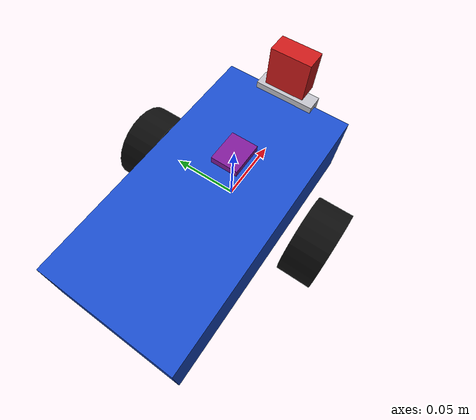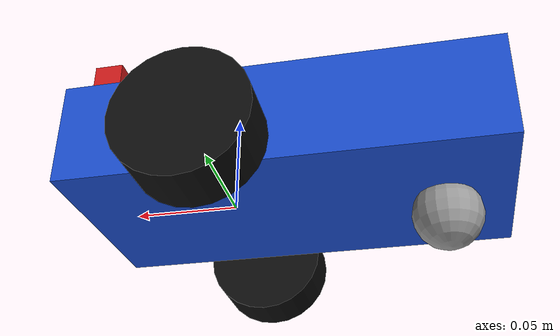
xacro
<?xml version="1.0"?>
<robot name="walle" xmlns:xacro="http://www.ros.org/wiki/xacro">

  <!-- Relative to this file -->
  <xacro:include filename="gazebo_car.urdf.xacro"/>

  <!-- ===== HC-SR04 (added for RQ3) ===== -->
  <xacro:property name="ultrasonic_drop" value="0.03"/>   <!-- below the camera center -->
  <xacro:property name="ultrasonic_half_beam" value="0.2618"/>   <!-- 15 deg -->

  <link name="ultrasonic_link">
    <visual>
      <geometry><box size="0.012 0.045 0.02"/></geometry>
      <material name="ultrasonic_silver"><color rgba="0.75 0.75 0.78 1"/></material>
    </visual>
    <inertial>
      <mass value="0.008"/>
      <inertia ixx="1e-6" ixy="0" ixz="0" iyy="1e-6" iyz="0" izz="1e-6"/>
    </inertial>
  </link>
  <joint name="ultrasonic_joint" type="fixed">
    <parent link="base_link"/>
    <child link="ultrasonic_link"/>
    <origin xyz="${camera_x} 0 ${camera_z - ultrasonic_drop}"/>
  </joint>

  <gazebo reference="ultrasonic_link">
    <sensor name="ultrasonic_sensor" type="gpu_lidar">
      <always_on>true</always_on>
      <!-- Faster than the firmware's 60 ms ping, so every ping sees a fresh frame -->
      <update_rate>20</update_rate>
      <topic>ultrasonic</topic>
      <lidar>
        <scan>
          <horizontal>
            <samples>21</samples>
            <resolution>1</resolution>
            <min_angle>${-ultrasonic_half_beam}</min_angle>
            <max_angle>${ultrasonic_half_beam}</max_angle>
          </horizontal>
          <vertical>
            <samples>13</samples>
            <resolution>1</resolution>
            <min_angle>${-ultrasonic_half_beam}</min_angle>
            <max_angle>${ultrasonic_half_beam}</max_angle>
          </vertical>
        </scan>
        <range>
          <min>0.02</min>
          <max>4.5</max>
          <resolution>0.001</resolution>
        </range>
      </lidar>
    </sensor>
  </gazebo>

</robot>

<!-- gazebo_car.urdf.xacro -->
<robot name="gazebo_car" xmlns:xacro="http://www.ros.org/wiki/xacro">

  <!-- ===== Dimensions: edit these to match your robot ===== -->
  <xacro:property name="chassis_length" value="0.2025"/>
  <xacro:property name="chassis_width" value="0.10"/>
  <xacro:property name="chassis_height" value="0.05"/>
  <xacro:property name="chassis_mass" value="0.60"/>
  <!-- Chassis center, measured from the midpoint between the two wheel axles -->
  <xacro:property name="chassis_x" value="-0.03"/>
  <xacro:property name="chassis_z" value="0.02"/>

  <xacro:property name="wheel_radius" value="0.03"/>
  <xacro:property name="wheel_width" value="0.026"/>
  <!-- Distance between the centers of the two drive wheels -->
  <xacro:property name="wheel_separation" value="0.145"/>
  <xacro:property name="wheel_mass" value="0.05"/>

  <!-- The caster touches the ground at the same height as the drive wheels -->
  <xacro:property name="caster_radius" value="0.0165"/>
  <xacro:property name="caster_x" value="-0.10"/>

  <xacro:property name="imu_x" value="0.0"/>
  <xacro:property name="imu_z" value="0.05"/>
  <xacro:property name="camera_x" value="0.07"/>
  <xacro:property name="camera_z" value="0.07"/>

  <!-- ===== Inertia helpers ===== -->
  <xacro:macro name="box_inertia" params="m x y z">
    <inertia ixx="${m*(y*y+z*z)/12}" ixy="0" ixz="0"
             iyy="${m*(x*x+z*z)/12}" iyz="0"
             izz="${m*(x*x+y*y)/12}"/>
  </xacro:macro>
  <xacro:macro name="cylinder_inertia" params="m r h">
    <inertia ixx="${m*(3*r*r+h*h)/12}" ixy="0" ixz="0"
             iyy="${m*(3*r*r+h*h)/12}" iyz="0"
             izz="${m*r*r/2}"/>
  </xacro:macro>

  <!-- ===== Chassis ===== -->
  <!-- base_link sits at the midpoint between the two wheel axles -->
  <link name="base_link">
    <visual>
      <origin xyz="${chassis_x} 0 ${chassis_z}"/>
      <geometry><box size="${chassis_length} ${chassis_width} ${chassis_height}"/></geometry>
      <material name="chassis_blue"><color rgba="0.1 0.3 0.8 1"/></material>
    </visual>
    <collision>
      <origin xyz="${chassis_x} 0 ${chassis_z}"/>
      <geometry><box size="${chassis_length} ${chassis_width} ${chassis_height}"/></geometry>
    </collision>
    <inertial>
      <origin xyz="${chassis_x} 0 ${chassis_z}"/>
      <mass value="${chassis_mass}"/>
      <xacro:box_inertia m="${chassis_mass}" x="${chassis_length}" y="${chassis_width}" z="${chassis_height}"/>
    </inertial>
  </link>

  <!-- ===== Drive wheels ===== -->
  <xacro:macro name="drive_wheel" params="side y_sign">
    <link name="${side}_wheel_link">
      <visual>
        <geometry><cylinder radius="${wheel_radius}" length="${wheel_width}"/></geometry>
        <material name="tire_black"><color rgba="0.05 0.05 0.05 1"/></material>
      </visual>
      <!-- A sphere touches the ground at one point, in the middle of the wheel.
           A cylinder touches at its edges, which makes the robot turn more than
           its wheel odometry calculates. -->
      <collision>
        <geometry><sphere radius="${wheel_radius}"/></geometry>
      </collision>
      <inertial>
        <mass value="${wheel_mass}"/>
        <xacro:cylinder_inertia m="${wheel_mass}" r="${wheel_radius}" h="${wheel_width}"/>
      </inertial>
    </link>
    <!-- The joint turns the wheel on its side so it spins about the robot's y axis -->
    <joint name="${side}_wheel_joint" type="continuous">
      <parent link="base_link"/>
      <child link="${side}_wheel_link"/>
      <origin xyz="0 ${y_sign*wheel_separation/2} 0" rpy="${-pi/2} 0 0"/>
      <axis xyz="0 0 1"/>
    </joint>
    <gazebo reference="${side}_wheel_link">
      <mu1>1.0</mu1>
      <mu2>1.0</mu2>
    </gazebo>
  </xacro:macro>

  <xacro:drive_wheel side="left" y_sign="1"/>
  <xacro:drive_wheel side="right" y_sign="-1"/>

  <!-- ===== Caster ball (no friction, so it slides like a real ball caster) ===== -->
  <link name="caster_link">
    <visual>
      <geometry><sphere radius="${caster_radius}"/></geometry>
      <material name="caster_gray"><color rgba="0.6 0.6 0.6 1"/></material>
    </visual>
    <collision>
      <geometry><sphere radius="${caster_radius}"/></geometry>
    </collision>
    <inertial>
      <mass value="0.01"/>
      <inertia ixx="1e-6" ixy="0" ixz="0" iyy="1e-6" iyz="0" izz="1e-6"/>
    </inertial>
  </link>
  <joint name="caster_joint" type="fixed">
    <parent link="base_link"/>
    <child link="caster_link"/>
    <origin xyz="${caster_x} 0 ${caster_radius - wheel_radius}"/>
  </joint>
  <gazebo reference="caster_link">
    <mu1>0.0</mu1>
    <mu2>0.0</mu2>
  </gazebo>

  <!-- ===== Sensor mounts ===== -->
  <link name="imu_link">
    <visual>
      <geometry><box size="0.025 0.02 0.005"/></geometry>
      <material name="imu_purple"><color rgba="0.5 0.1 0.6 1"/></material>
    </visual>
    <inertial>
      <mass value="0.005"/>
      <inertia ixx="1e-7" ixy="0" ixz="0" iyy="1e-7" iyz="0" izz="1e-7"/>
    </inertial>
  </link>
  <joint name="imu_joint" type="fixed">
    <parent link="base_link"/>
    <child link="imu_link"/>
    <origin xyz="${imu_x} 0 ${imu_z}"/>
  </joint>

  <link name="camera_link">
    <visual>
      <geometry><box size="0.015 0.03 0.03"/></geometry>
      <material name="camera_red"><color rgba="0.8 0.1 0.1 1"/></material>
    </visual>
    <inertial>
      <mass value="0.01"/>
      <inertia ixx="1e-6" ixy="0" ixz="0" iyy="1e-6" iyz="0" izz="1e-6"/>
    </inertial>
  </link>
  <joint name="camera_joint" type="fixed">
    <parent link="base_link"/>
    <child link="camera_link"/>
    <origin xyz="${camera_x} 0 ${camera_z}"/>
  </joint>

  <!-- ===== Gazebo sensors ===== -->
  <gazebo reference="imu_link">
    <sensor name="imu_sensor" type="imu">
      <always_on>true</always_on>
      <update_rate>50</update_rate>
      <topic>imu</topic>
      <imu>
        <angular_velocity>
          <z><noise type="gaussian"><mean>0</mean><stddev>0.002</stddev></noise></z>
        </angular_velocity>
        <linear_acceleration>
          <x><noise type="gaussian"><mean>0</mean><stddev>0.02</stddev></noise></x>
          <y><noise type="gaussian"><mean>0</mean><stddev>0.02</stddev></noise></y>
        </linear_acceleration>
      </imu>
    </sensor>
  </gazebo>

  <gazebo reference="camera_link">
    <sensor name="camera_sensor" type="camera">
      <always_on>true</always_on>
      <!-- A small image at 10 Hz keeps software rendering fast -->
      <update_rate>10</update_rate>
      <topic>camera/image_raw</topic>
      <camera>
        <horizontal_fov>1.047</horizontal_fov>
        <image>
          <width>320</width>
          <height>240</height>
          <format>R8G8B8</format>
        </image>
        <clip>
          <near>0.05</near>
          <far>20</far>
        </clip>
      </camera>
    </sensor>
  </gazebo>

  <!-- ===== Gazebo plugins ===== -->
  <gazebo>
    <!-- Differential drive: listens on /cmd_vel, publishes wheel odometry on /odom -->
    <plugin filename="ignition-gazebo-diff-drive-system"
            name="ignition::gazebo::systems::DiffDrive">
      <left_joint>left_wheel_joint</left_joint>
      <right_joint>right_wheel_joint</right_joint>
      <wheel_separation>${wheel_separation}</wheel_separation>
      <wheel_radius>${wheel_radius}</wheel_radius>
      <max_linear_velocity>0.3</max_linear_velocity>
      <min_linear_velocity>-0.3</min_linear_velocity>
      <max_angular_velocity>1.5</max_angular_velocity>
      <min_angular_velocity>-1.5</min_angular_velocity>
      <max_linear_acceleration>1.0</max_linear_acceleration>
      <min_linear_acceleration>-1.0</min_linear_acceleration>
      <topic>/cmd_vel</topic>
      <odom_topic>/odom</odom_topic>
      <tf_topic>/tf</tf_topic>
      <frame_id>odom</frame_id>
      <child_frame_id>base_link</child_frame_id>
      <odom_publish_frequency>30</odom_publish_frequency>
    </plugin>

    <!-- Publishes wheel angles and speeds (like wheel encoders) on /joint_states -->
    <plugin filename="ignition-gazebo-joint-state-publisher-system"
            name="ignition::gazebo::systems::JointStatePublisher">
      <topic>/joint_states</topic>
    </plugin>
  </gazebo>

</robot>
